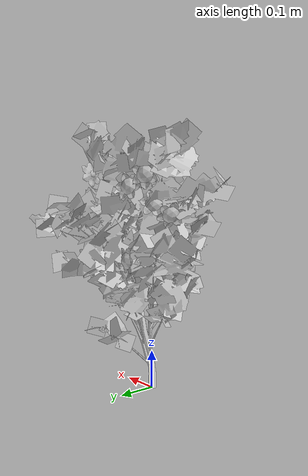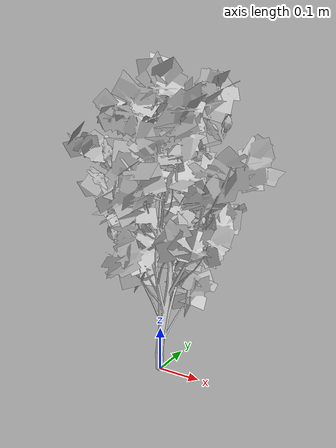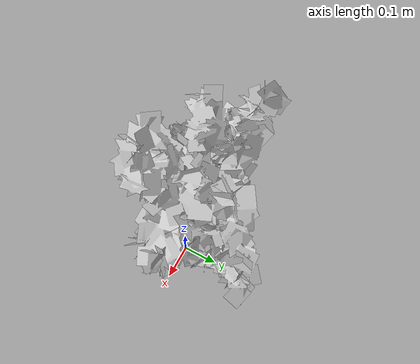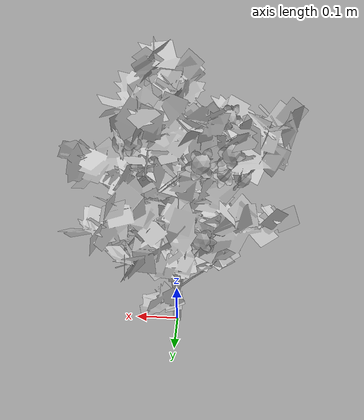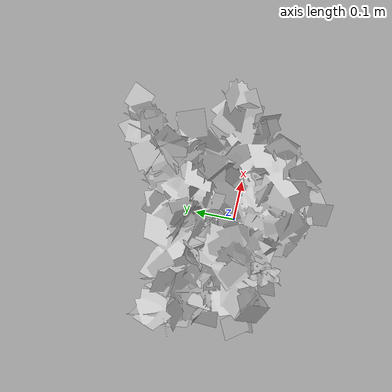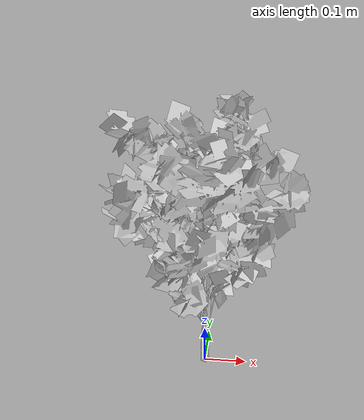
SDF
<?xml version="1.0" ?>
<sdf version="1.6">
  <model name="tree-flowers">
    <!--Skew-Seed:2147483648-->
    <static>true</static>
    <link name="link"/>
    <include>
      <uri>model://tree-mesh</uri>
      <pose>0 0 0 0 0 0</pose>
    </include>
    <joint name="tree_joint" type="fixed">
      <child>tree-mesh::link</child>
      <parent>link</parent>
    </joint>
    <include>
      <name>bramble_0</name>
      <uri>model://bramble</uri>
      <pose> -0.05944811931957017 0.11936023777141916 0.35122512162883207 -1.3838994195315064 2.0512038068584237 0.0</pose>
    </include>
    <joint name="flower_joint_0" type="fixed">
      <child>bramble_0::flower_link</child>
      <parent>link</parent>
    </joint>
    <include>
      <name>bramble_1</name>
      <uri>model://bramble</uri>
      <pose> -0.13518336260593516 0.05860787621265628 0.46151311735362005 -2.678029745568085 1.002054347141256 0.0</pose>
    </include>
    <joint name="flower_joint_1" type="fixed">
      <child>bramble_1::flower_link</child>
      <parent>link</parent>
    </joint>
    <include>
      <name>bramble_2</name>
      <uri>model://bramble</uri>
      <pose> 0.05144664784942063 0.07444721920352199 0.4893067482969249 -1.481265820434106 0.8977286179863693 0.0</pose>
    </include>
    <joint name="flower_joint_2" type="fixed">
      <child>bramble_2::flower_link</child>
      <parent>link</parent>
    </joint>
    <include>
      <name>bramble_3</name>
      <uri>model://bramble</uri>
      <pose> -0.09648717292758341 -0.044623338651438485 0.5045610862913905 -3.4882984312651617 1.3351855284602139 0.0</pose>
    </include>
    <joint name="flower_joint_3" type="fixed">
      <child>bramble_3::flower_link</child>
      <parent>link</parent>
    </joint>
    <include>
      <name>bramble_4</name>
      <uri>model://bramble</uri>
      <pose> -0.09365792042573631 -0.03821621529205205 0.32576667560033945 -3.778613456247749 1.1480844331912963 0.0</pose>
    </include>
    <joint name="flower_joint_4" type="fixed">
      <child>bramble_4::flower_link</child>
      <parent>link</parent>
    </joint>
    <include>
      <name>bramble_5</name>
      <uri>model://bramble</uri>
      <pose> 0.05151092374943515 0.058438635310266995 0.38723274482247994 -1.391717502811101 2.1628098751996108 0.0</pose>
    </include>
    <joint name="flower_joint_5" type="fixed">
      <child>bramble_5::flower_link</child>
      <parent>link</parent>
    </joint>
    <include>
      <name>bramble_6</name>
      <uri>model://bramble</uri>
      <pose> -0.09454346933660424 0.07412867022087924 0.4839220614074211 -2.4734554394460666 1.9648735183603123 0.0</pose>
    </include>
    <joint name="flower_joint_6" type="fixed">
      <child>bramble_6::flower_link</child>
      <parent>link</parent>
    </joint>
    <include>
      <name>bramble_7</name>
      <uri>model://bramble</uri>
      <pose> -0.10870205056922155 0.10955220307565745 0.550117117442368 -2.1017434128191788 1.5166573742630929 0.0</pose>
    </include>
    <joint name="flower_joint_7" type="fixed">
      <child>bramble_7::flower_link</child>
      <parent>link</parent>
    </joint>
    <include>
      <name>bramble_8</name>
      <uri>model://bramble</uri>
      <pose> -0.09915895662191951 0.06219924592076647 0.5941746421797243 -2.359394253354019 1.7611770322003206 0.0</pose>
    </include>
    <joint name="flower_joint_8" type="fixed">
      <child>bramble_8::flower_link</child>
      <parent>link</parent>
    </joint>
    <include>
      <name>bramble_9</name>
      <uri>model://bramble</uri>
      <pose> 0.0927879567268301 0.12170501665721614 0.5679354157693962 -0.22564405783536579 1.7854799663355654 0.0</pose>
    </include>
    <joint name="flower_joint_9" type="fixed">
      <child>bramble_9::flower_link</child>
      <parent>link</parent>
    </joint>
    <include>
      <name>bramble_10</name>
      <uri>model://bramble</uri>
      <pose> -0.05237288848854521 0.1132232622289421 0.5247009623456548 -2.0231648218374367 2.028375557933519 0.0</pose>
    </include>
    <joint name="flower_joint_10" type="fixed">
      <child>bramble_10::flower_link</child>
      <parent>link</parent>
    </joint>
    <include>
      <name>bramble_11</name>
      <uri>model://bramble</uri>
      <pose> 0.07824471606051259 0.08005916922867179 0.5485620137308476 -0.6022750615198526 0.7992401143360043 0.0</pose>
    </include>
    <joint name="flower_joint_11" type="fixed">
      <child>bramble_11::flower_link</child>
      <parent>link</parent>
    </joint>
    <include>
      <name>bramble_12</name>
      <uri>model://bramble</uri>
      <pose> -0.10571508969628224 -0.06938287539495781 0.4554326891978754 -3.332740041183882 0.8203058731772871 0.0</pose>
    </include>
    <joint name="flower_joint_12" type="fixed">
      <child>bramble_12::flower_link</child>
      <parent>link</parent>
    </joint>
  </model>
</sdf>

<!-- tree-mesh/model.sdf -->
<sdf version="1.6">
  <model name="tree-mesh">
    <static>true</static>
    <link name="link">

      <collision name="collision">
        <geometry>
          <mesh>
            <uri>model://tree-mesh/meshes/new_tree.dae</uri>
            <scale>0.0625 0.0625 0.0625</scale>
          </mesh>
        </geometry>
      </collision>

      <!-- simplified collision for sake of speed since leaves shouldn't be blocking anyway -->

      <visual name="leaves">
        <geometry>
          <mesh>
            <uri>model://tree-mesh/meshes/leaves.dae</uri>
            <scale>0.0325 0.0325 0.0325</scale>
          </mesh>
        </geometry>
        <material>
          <script>
            <uri>model://tree-mesh/materials/scripts/</uri>
            <uri>model://tree-mesh/materials/textures/</uri>
            <name>NewTree/Branch</name>
          </script>
        </material>
      </visual>
      <visual name="bark">
        <geometry>
          <mesh>
            <uri>model://tree-mesh/meshes/bark.dae</uri>
            <scale>0.0325 0.0325 0.0325</scale>
          </mesh>
        </geometry>
        <material>
          <script>
            <uri>model://tree-mesh/materials/scripts/</uri>
            <uri>model://tree-mesh/materials/textures/</uri>
            <name>NewTree/Bark</name>
          </script>
        </material>
      </visual>
    </link>
  </model>
</sdf>

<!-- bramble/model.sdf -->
<sdf version="1.6">
  <model name="bramble-flower">
    <static>true</static>
    <link name="flower_link">
      <collision name="body_collision">
        <geometry>
          <mesh>
            <uri>model://bramble/meshes/bramble.dae</uri>
            <scale>0.4 0.4 0.4</scale>
          </mesh>
        </geometry>
      </collision>
      <visual name="petals">
        <geometry>
          <mesh>
            <uri>model://bramble/meshes/bramble.dae</uri>
            <scale>0.4 0.4 0.4</scale>
            <submesh>
              <name>petal</name>
            </submesh>
          </mesh>
        </geometry>
        <material>
          <script>
            <uri>model://bramble/materials/scripts/</uri>
            <uri>model://bramble/materials/textures/</uri>
            <name>Bramble/Petal</name>
          </script>
        </material>
      </visual>
      <visual name="carpel">
        <geometry>
          <mesh>
            <uri>model://bramble/meshes/bramble.dae</uri>
            <scale>0.4 0.4 0.4</scale>
            <submesh>
              <name>carpel</name>
            </submesh>
          </mesh>
        </geometry>
        <material>
          <script>
            <uri>model://bramble/materials/scripts/</uri>
            <uri>model://bramble/materials/textures/</uri>
            <name>Bramble/Carpel</name>
          </script>
        </material>
      </visual>
      <visual name="stamen">
        <geometry>
          <mesh>
            <uri>model://bramble/meshes/bramble.dae</uri>
            <scale>0.4 0.4 0.4</scale>
            <submesh>
              <name>stamen</name>
            </submesh>
          </mesh>
        </geometry>
        <material>
          <script>
            <uri>model://bramble/materials/scripts/</uri>
            <uri>model://bramble/materials/textures/</uri>
            <name>Bramble/Stamen</name>
          </script>
        </material>
      </visual>
    </link>
  </model>
</sdf>
